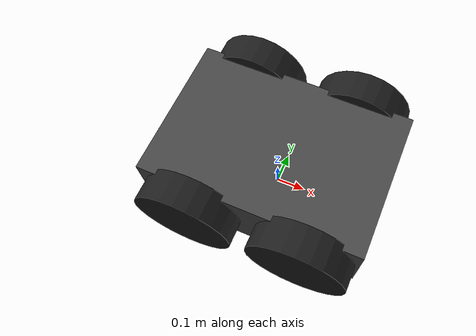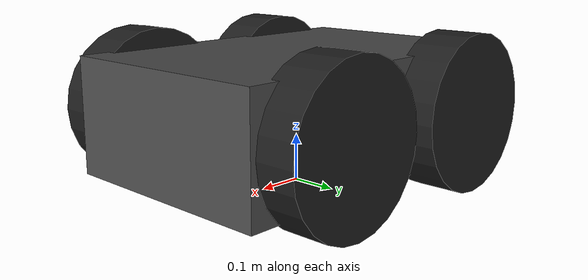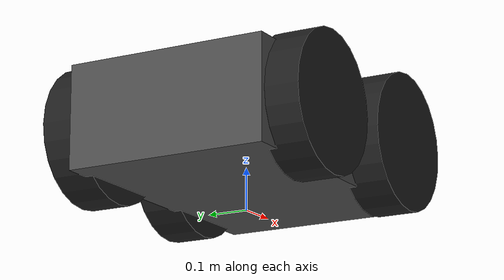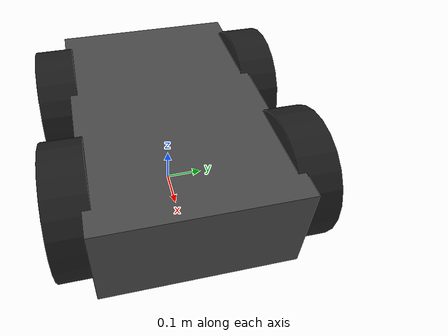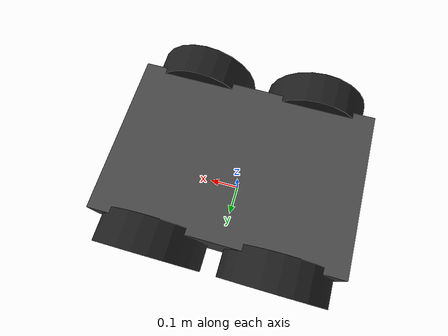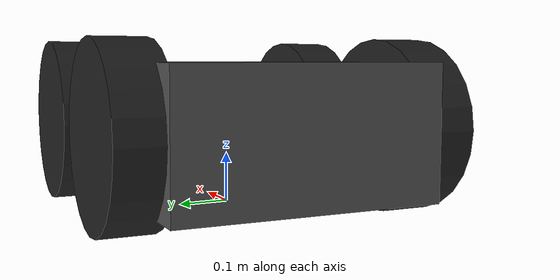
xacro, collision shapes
<?xml version="1.0"?>
<robot xmlns:xacro="http://www.ros.org/wiki/xacro">

  <xacro:property name="mesh_scale"   value="0.004065 0.004065 0.004065"/>
  <xacro:property name="base_mass"    value="8.0"/>
  <xacro:property name="base_len_x"   value="0.52"/>
  <xacro:property name="base_len_y"   value="0.42"/>
  <xacro:property name="base_len_z"   value="0.10"/>
  <xacro:property name="wheel_radius" value="0.165"/>
  <xacro:property name="wheel_width"  value="0.10"/>
  <xacro:property name="wheel_mass"   value="0.5"/>
  <!-- half track -->
  <xacro:property name="wheel_track_half_y" value="0.275"/>

  <link name="base_footprint"/>

  <joint name="base_joint" type="fixed">
    <parent link="base_footprint"/>
    <child  link="base_link"/>
    <origin xyz="0.0 0.0 ${wheel_radius}" rpy="0 0 0"/>
  </joint>

  <link name="base_link">
    <visual>
      <origin xyz="0 0 0" rpy="0 0 ${pi/2}"/>
      <geometry>
        <mesh filename="package://driftbot_description/meshes/base_link.stl" scale="${mesh_scale}"/>
      </geometry>
      <material name="dark_grey"/>
    </visual>
    <collision>
      <origin xyz="0 0 0" rpy="0 0 0"/>
      <geometry><box size="${base_len_x} ${base_len_y} ${base_len_z}"/></geometry>
    </collision>
    <xacro:inertia_box m="${base_mass}" lx="${base_len_x}" ly="${base_len_y}" lz="${base_len_z}"/>
  </link>

  <gazebo reference="base_link">
    <mu1>0.8</mu1>
    <mu2>0.8</mu2>
  </gazebo>

  <link name="top_shell_link">
    <visual>
      <origin xyz="0 0 0" rpy="0 0 ${pi/2}"/>
      <geometry>
        <mesh filename="package://driftbot_description/meshes/top_shell_link.stl" scale="${mesh_scale}"/>
      </geometry>
      <material name="dark_grey"/>
    </visual>
    <collision>
      <origin xyz="0 0 0" rpy="0 0 0"/>
      <geometry><box size="0.732 0.488 0.244"/></geometry>
    </collision>
    <xacro:inertia_box m="1.324" lx="0.732" ly="0.488" lz="0.244"/>
  </link>

  <joint name="base_top_joint" type="fixed">
    <parent link="base_link"/>
    <child  link="top_shell_link"/>
    <origin xyz="0 0 0" rpy="0 0 0"/>
  </joint>

  <xacro:macro name="wheel" params="name jx jy jz vox voy voz mesh">
    <link name="wheel_${name}">
      <visual>
        <origin xyz="${vox} ${voy} ${voz}" rpy="0 0 ${pi/2}"/>
        <geometry>
          <mesh filename="package://driftbot_description/meshes/${mesh}" scale="${mesh_scale}"/>
        </geometry>
        <material name="black"/>
      </visual>
      <collision>
        <origin xyz="0 0 0" rpy="${pi/2} 0 0"/>
        <geometry>
          <cylinder radius="${wheel_radius}" length="${wheel_width}"/>
        </geometry>
      </collision>
      <xacro:inertia_cylinder_y_at m="${wheel_mass}" r="${wheel_radius}" l="${wheel_width}" ox="0" oy="0" oz="0"/>
    </link>

    <joint name="wheel_${name}_joint" type="continuous">
      <parent link="base_link"/>
      <child  link="wheel_${name}"/>
      <origin xyz="${jx} ${jy} ${jz}" rpy="0 0 0"/>
      <axis xyz="0 1 0"/>
      <dynamics damping="0.05" friction="0.1"/>
    </joint>

    <gazebo reference="wheel_${name}">
      <mu1>1.2</mu1>
      <mu2>1.2</mu2>
      <kp>1e6</kp>
      <kd>1.0</kd>
    </gazebo>
  </xacro:macro>

  <xacro:wheel name="fl" jx="0.19"  jy="${wheel_track_half_y}"  jz="0.0" vox="-0.19677" voy="-0.26422" voz="-0.01951" mesh="wheel_front_left_link.stl"/>
  <xacro:wheel name="fr" jx="0.19"  jy="-${wheel_track_half_y}" jz="0.0" vox="-0.19753" voy="0.26382" voz="-0.01951" mesh="wheel_front_right_link.stl"/>
  <xacro:wheel name="rl" jx="-0.19" jy="${wheel_track_half_y}"  jz="0.0" vox="0.19753" voy="-0.26422" voz="-0.01951" mesh="wheel_back_left_link.stl"/>
  <xacro:wheel name="rr" jx="-0.19" jy="-${wheel_track_half_y}" jz="0.0" vox="0.19677" voy="0.26382" voz="-0.01951" mesh="wheel_back_right_link.stl"/>
</robot>
